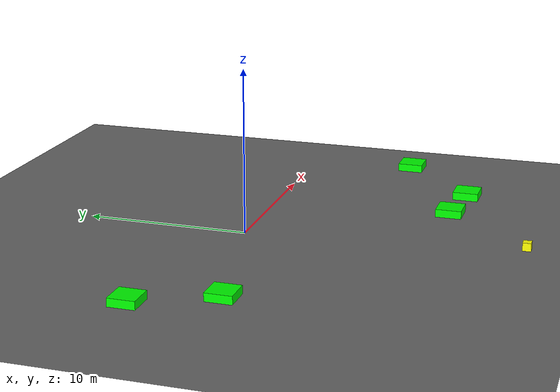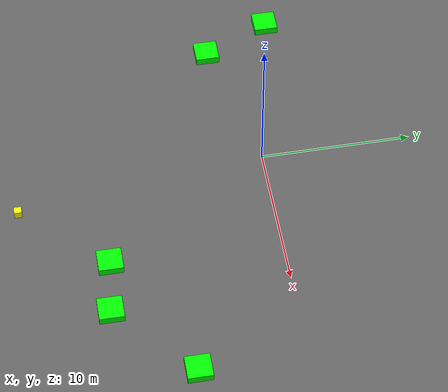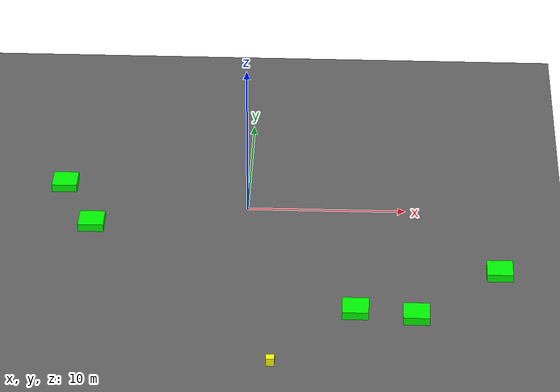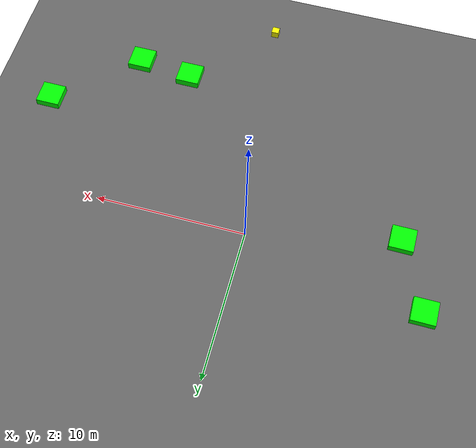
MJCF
<mujoco model="baseline_lvl3_obs5_seed2006">
    <compiler angle="degree" coordinate="local" inertiafromgeom="true"/>
    <option integrator="RK4" timestep="0.01"/>

    <asset>
        <texture builtin="gradient" height="100" rgb1="0.6 0.8 1" rgb2="0 0 0" type="skybox" width="100"/>
        <texture name="floor_texture" type="2d" builtin="checker" width="100" height="100" rgb1="0 0 0" rgb2="0.8 0.8 0.8"/>
        <material name="MatPlane" reflectance="0.5" shininess="1" specular="1" texrepeat="10 10" texture="floor_texture"/>
    </asset>

    <!-- Excluding the contact between the agent and the goal, and the agent and the floor -->
    <contact>
        <exclude body1="agent" body2="goal"/>
        <exclude body1 = "agent" body2 = "floor"/>
    </contact>

    <extension>
        <plugin plugin = "mujoco.pid">
            <instance name = "pid1">
                <config key="kp" value="2"/>
                <config key="ki" value="0"/>
                <config key="kd" value="55"/>
            </instance>
        </plugin>
    </extension>

    <worldbody>
        <light cutoff="100" diffuse="1 1 1" dir="-0 0 -1.3" directional="true" exponent="1" pos="0 0 1.3" specular=".1 .1 .1"/>
        <body name="floor" pos="0 0 0">
            <geom name="floor_geom" type="plane" size="20 20 0.1" material="MatPlane"/>
        </body>

        <!-- Goal -->
        <body name="goal" pos="12.000 12.000 0">
            <geom name="goal_geom" type="plane" size="0.5 0.5 1" pos="0 0 0" rgba="1 0 0 1"/>
        </body>

        <!-- Agent -->
        <body name="agent" pos="2.106 -16.465 0.25">
            <joint name="j1" type="slide" axis ="1 0 0 "/>
            <joint name="j2" type="slide" axis ="0 1 0 "/>
            <geom name="agent_geom" type="box" size="0.25 0.25 0.250" rgba="1 1 0 1"/>
        </body>

    <body name="obstacle1" pos="15.786 -6.794 0.250">
      <geom name="obstacle1_geom" type="box"
            size="0.800 0.800 0.250"
            rgba="0 1 0 1"/>
    </body>
    <body name="obstacle2" pos="-9.743 -2.181 0.250">
      <geom name="obstacle2_geom" type="box"
            size="0.800 0.800 0.250"
            rgba="0 1 0 1"/>
    </body>
    <body name="obstacle3" pos="-11.877 2.352 0.250">
      <geom name="obstacle3_geom" type="box"
            size="0.800 0.800 0.250"
            rgba="0 1 0 1"/>
    </body>
    <body name="obstacle4" pos="10.666 -11.499 0.250">
      <geom name="obstacle4_geom" type="box"
            size="0.800 0.800 0.250"
            rgba="0 1 0 1"/>
    </body>
    <body name="obstacle5" pos="7.007 -11.085 0.250">
      <geom name="obstacle5_geom" type="box"
            size="0.800 0.800 0.250"
            rgba="0 1 0 1"/>
    </body>
    </worldbody>

    <actuator>
        <plugin joint="j1" plugin="mujoco.pid" instance="pid1" />
        <plugin joint="j2" plugin="mujoco.pid" instance="pid1"/>
    </actuator>

  <sensor>
    <distance name="dist1" geom1="agent_geom" geom2="obstacle1_geom" cutoff="1.5"/>
    <distance name="dist2" geom1="agent_geom" geom2="obstacle2_geom" cutoff="1.5"/>
    <distance name="dist3" geom1="agent_geom" geom2="obstacle3_geom" cutoff="1.5"/>
    <distance name="dist4" geom1="agent_geom" geom2="obstacle4_geom" cutoff="1.5"/>
    <distance name="dist5" geom1="agent_geom" geom2="obstacle5_geom" cutoff="1.5"/>
  </sensor>
</mujoco>
